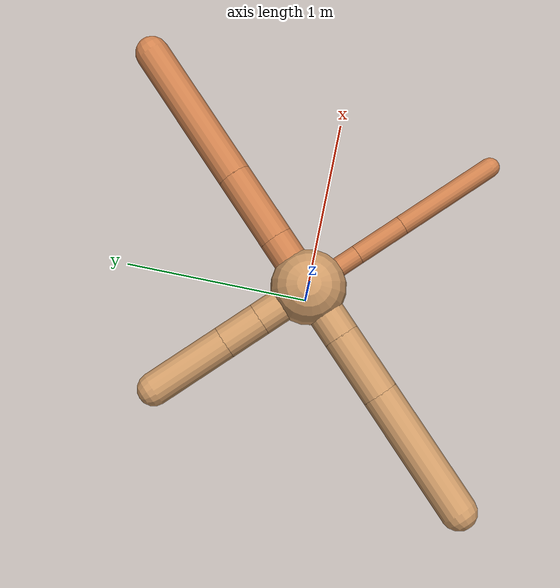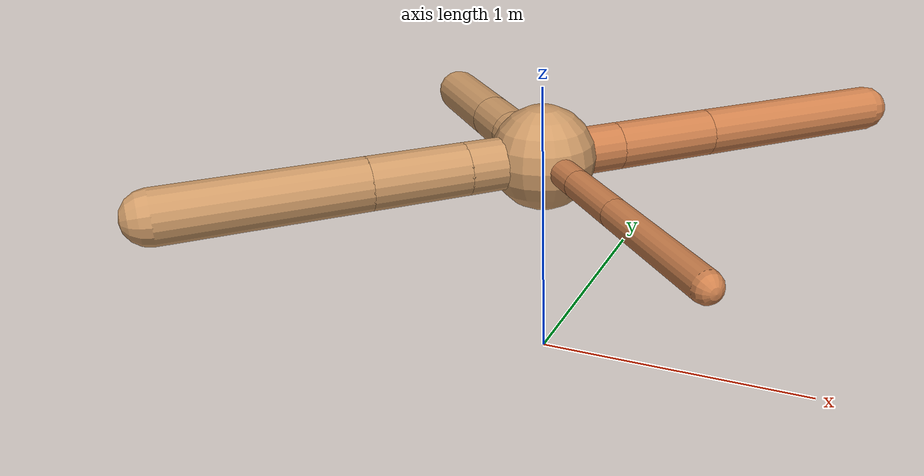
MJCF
<?xml version="1.0" ?>
<mujoco model="ant">

	<compiler angle="degree" coordinate="local" inertiafromgeom="true"/>

	<option integrator="RK4" timestep="0.01"/>

	<custom>

		<numeric data="0.0 0.0 0.55 1.0 0.0 0.0 0.0 0.0 1.0 0.0 -1.0 0.0 -1.0 0.0 1.0" name="init_qpos"/>

	</custom>

	<default>

		<joint armature="1" damping="1" limited="true"/>

		<geom conaffinity="0" condim="3" density="5.0" friction="1.5 0.1 0.1" margin="0.01" rgba="0.8 0.6 0.4 1"/>

	</default>

	<worldbody>

		<body name="torso" pos="0 0 0.75">

			<geom name="torso_geom" pos="0 0 0" size="0.18391157016134765" type="sphere"/>

			<!--joint armature="0" damping="0" limited="false" margin="0.01" name="root" pos="0 0 0" type="free"/-->

			<body name="front_left_leg" pos="0 0 0">

				<geom fromto="0 0 0 0.2 0.2 0" name="aux_1_geom" size="0.08411001545134374" type="capsule" rgba=".8 .5 .3 1"/>

				<body name="aux_1" pos="0.2 0.2 0">

					<joint axis="0 0 1" name="hip_1" pos="0.0 0.0 0.0" range="-40 40" type="hinge"/>

					<geom fromto="0 0 0 0.2600418616672012 0.2600418616672012 0" name="left_leg_geom" size="0.08411001545134374" type="capsule" rgba=".8 .5 .3 1"/>

					<body pos="0.2600418616672012 0.2600418616672012 0" name="front_left_foot">

						<joint axis="-1 1 0" name="ankle_1" pos="0.0 0.0 0.0" range="30 100" type="hinge"/>

						<geom fromto="0 0 0 0.5200837233344024 0.5200837233344024 0" name="left_ankle_geom" size="0.08411001545134374" type="capsule" rgba=".8 .5 .3 1"/>

					</body>

				</body>

			</body>

			<body name="front_right_leg" pos="0 0 0">

				<geom fromto="0 0 0 -0.2 0.2 0" name="aux_2_geom" size="0.08268717923822702" type="capsule"/>

				<body name="aux_2" pos="-0.2 0.2 0">

					<joint axis="0 0 1" name="hip_2" pos="0.0 0.0 0.0" range="-40 40" type="hinge"/>

					<geom fromto="0 0 0 -0.14110447061625178 0.14110447061625178 0" name="right_leg_geom" size="0.08268717923822702" type="capsule"/>

					<body pos="-0.14110447061625178 0.14110447061625178 0" name="front_right_foot">

						<joint axis="1 1 0" name="ankle_2" pos="0.0 0.0 0.0" range="-100 -30" type="hinge"/>

						<geom fromto="0 0 0 -0.28220894123250356 0.28220894123250356 0" name="right_ankle_geom" size="0.08268717923822702" type="capsule"/>

					</body>

				</body>

			</body>

			<body name="left_back_leg" pos="0 0 0">

				<geom fromto="0 0 0 -0.2 -0.2 0" name="aux_3_geom" size="0.09035535737261012" type="capsule"/>

				<body name="aux_3" pos="-0.2 -0.2 0">

					<joint axis="0 0 1" name="hip_3" pos="0.0 0.0 0.0" range="-40 40" type="hinge"/>

					<geom fromto="0 0 0 -0.23346452400021178 -0.23346452400021178 0" name="back_leg_geom" size="0.09035535737261012" type="capsule"/>

					<body pos="-0.23346452400021178 -0.23346452400021178 0" name="left_back_foot">

						<joint axis="-1 1 0" name="ankle_3" pos="0.0 0.0 0.0" range="-100 -30" type="hinge"/>

						<geom fromto="0 0 0 -0.46692904800042356 -0.46692904800042356 0" name="third_ankle_geom" size="0.09035535737261012" type="capsule"/>

					</body>

				</body>

			</body>

			<body name="right_back_leg" pos="0 0 0">

				<geom fromto="0 0 0 0.2 -0.2 0" name="aux_4_geom" size="0.049033649139519984" type="capsule" rgba=".8 .5 .3 1"/>

				<body name="aux_4" pos="0.2 -0.2 0">

					<joint axis="0 0 1" name="hip_4" pos="0.0 0.0 0.0" range="-40 40" type="hinge"/>

					<geom fromto="0 0 0 0.18242142190433253 -0.18242142190433253 0" name="rightback_leg_geom" size="0.049033649139519984" type="capsule" rgba=".8 .5 .3 1"/>

					<body pos="0.18242142190433253 -0.18242142190433253 0" name="right_back_foot">

						<joint axis="1 1 0" name="ankle_4" pos="0.0 0.0 0.0" range="30 100" type="hinge"/>

						<geom fromto="0 0 0 0.36484284380866505 -0.36484284380866505 0" name="fourth_ankle_geom" size="0.049033649139519984" type="capsule" rgba=".8 .5 .3 1"/>

					</body>

				</body>

			</body>

		</body>

	</worldbody>

	<actuator>

		<motor ctrllimited="true" ctrlrange="-1.0 1.0" joint="hip_4" gear="150"/>

		<motor ctrllimited="true" ctrlrange="-1.0 1.0" joint="ankle_4" gear="150"/>

		<motor ctrllimited="true" ctrlrange="-1.0 1.0" joint="hip_1" gear="150"/>

		<motor ctrllimited="true" ctrlrange="-1.0 1.0" joint="ankle_1" gear="150"/>

		<motor ctrllimited="true" ctrlrange="-1.0 1.0" joint="hip_2" gear="150"/>

		<motor ctrllimited="true" ctrlrange="-1.0 1.0" joint="ankle_2" gear="150"/>

		<motor ctrllimited="true" ctrlrange="-1.0 1.0" joint="hip_3" gear="150"/>

		<motor ctrllimited="true" ctrlrange="-1.0 1.0" joint="ankle_3" gear="150"/>

	</actuator>

</mujoco>
